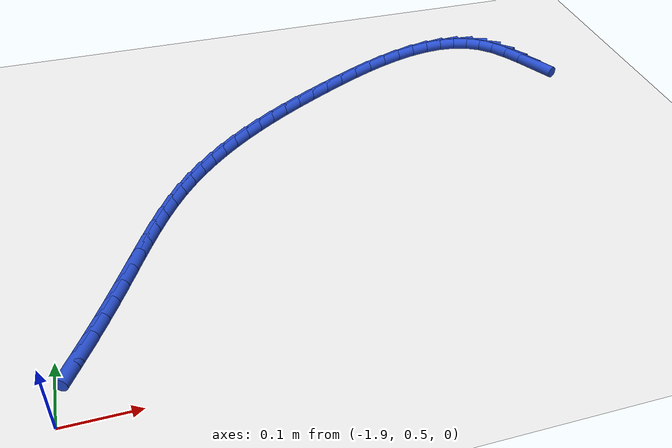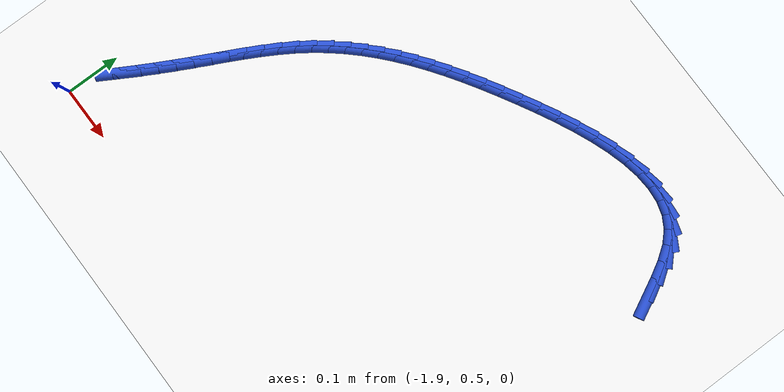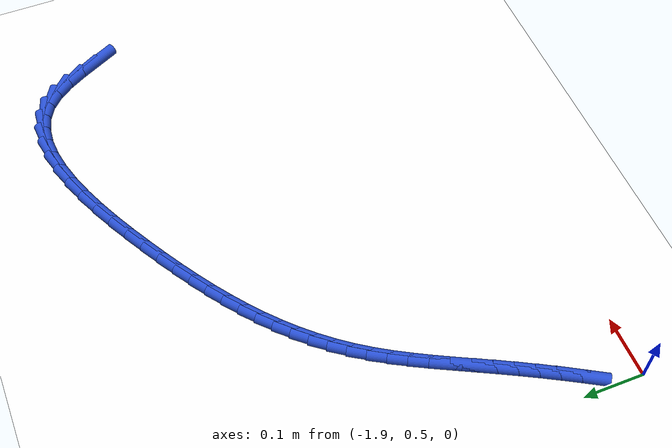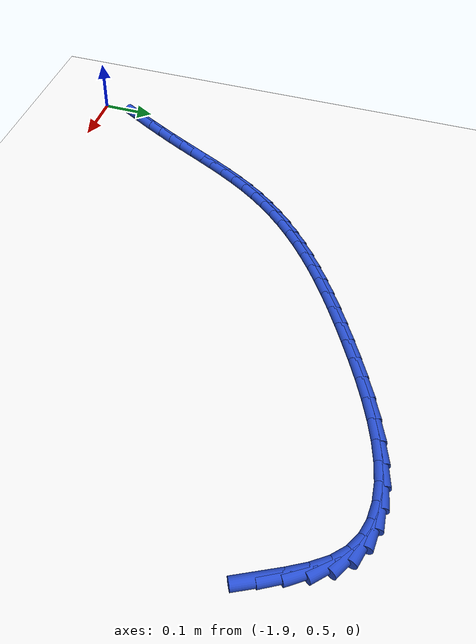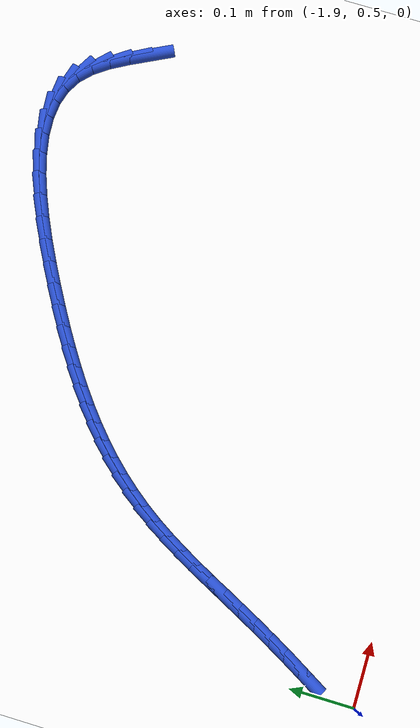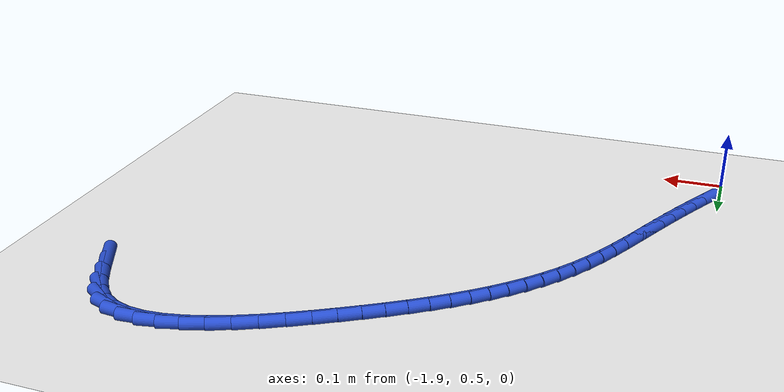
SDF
<sdf version="1.6">
 <world name="default">
  <model name="ground_plane">
   <static>1</static>
   <link name="link">
    <collision name="collision">
     <geometry><plane><normal>0 0 1</normal><size>100 100</size></plane></geometry>
     <surface><friction><ode><mu>100</mu><mu2>50</mu2></ode></friction></surface>
    </collision>
    <visual name="visual">
     <cast_shadows>0</cast_shadows>
     <geometry><plane><normal>0 0 1</normal><size>100 100</size></plane></geometry>
     <material>
      <script><uri>file://media/materials/scripts/gazebo.material</uri><name>Gazebo/WhiteGlow</name></script>
     </material>
    </visual>
   </link>
  </model>
  <model name="line">
   <link name="link_56">
    <pose>-1.0192024056913565 1.08543734775537 0.01 0 1.57 -1.1001150137602542</pose>
    <collision name="collision">
     <geometry><cylinder><radius>0.01</radius><length>0.08</length></cylinder></geometry>
    </collision>
    <visual name="visual">
     <material>
      <script><name>Gazebo/Blue</name><uri>file://media/materials/scripts/gazebo.material</uri></script>
     </material>
     <geometry><cylinder><radius>0.01</radius><length>0.08</length></cylinder></geometry>
    </visual>
   </link>
   <link name="link_57">
    <pose>-1.034193548061346 1.1148997214297889 0.01 0 1.57 -1.0549966539734452</pose>
    <collision name="collision">
     <geometry><cylinder><radius>0.01</radius><length>0.08</length></cylinder></geometry>
    </collision>
    <visual name="visual">
     <material>
      <script><name>Gazebo/Blue</name><uri>file://media/materials/scripts/gazebo.material</uri></script>
     </material>
     <geometry><cylinder><radius>0.01</radius><length>0.08</length></cylinder></geometry>
    </visual>
   </link>
   <link name="link_58">
    <pose>-1.0499886132645053 1.1427570839077557 0.01 0 1.57 -0.9488508935099754</pose>
    <collision name="collision">
     <geometry><cylinder><radius>0.01</radius><length>0.08</length></cylinder></geometry>
    </collision>
    <visual name="visual">
     <material>
      <script><name>Gazebo/Blue</name><uri>file://media/materials/scripts/gazebo.material</uri></script>
     </material>
     <geometry><cylinder><radius>0.01</radius><length>0.08</length></cylinder></geometry>
    </visual>
   </link>
   <link name="link_59">
    <pose>-1.0674953368311586 1.1671788211652299 0.01 0 1.57 -0.7615122972132938</pose>
    <collision name="collision">
     <geometry><cylinder><radius>0.01</radius><length>0.08</length></cylinder></geometry>
    </collision>
    <visual name="visual">
     <material>
      <script><name>Gazebo/Blue</name><uri>file://media/materials/scripts/gazebo.material</uri></script>
     </material>
     <geometry><cylinder><radius>0.01</radius><length>0.08</length></cylinder></geometry>
    </visual>
   </link>
   <link name="link_60">
    <pose>-1.0876102283318687 1.1863550321269283 0.01 0 1.57 -0.5149608002329189</pose>
    <collision name="collision">
     <geometry><cylinder><radius>0.01</radius><length>0.08</length></cylinder></geometry>
    </collision>
    <visual name="visual">
     <material>
      <script><name>Gazebo/Blue</name><uri>file://media/materials/scripts/gazebo.material</uri></script>
     </material>
     <geometry><cylinder><radius>0.01</radius><length>0.08</length></cylinder></geometry>
    </visual>
   </link>
   <link name="link_61">
    <pose>-1.1107132901004675 1.1994288200178327 0.01 0 1.57 -0.28146919483834854</pose>
    <collision name="collision">
     <geometry><cylinder><radius>0.01</radius><length>0.08</length></cylinder></geometry>
    </collision>
    <visual name="visual">
     <material>
      <script><name>Gazebo/Blue</name><uri>file://media/materials/scripts/gazebo.material</uri></script>
     </material>
     <geometry><cylinder><radius>0.01</radius><length>0.08</length></cylinder></geometry>
    </visual>
   </link>
   <link name="link_62">
    <pose>-1.1364631551109985 1.2068742821963363 0.01 0 1.57 -0.08515277672372246</pose>
    <collision name="collision">
     <geometry><cylinder><radius>0.01</radius><length>0.08</length></cylinder></geometry>
    </collision>
    <visual name="visual">
     <material>
      <script><name>Gazebo/Blue</name><uri>file://media/materials/scripts/gazebo.material</uri></script>
     </material>
     <geometry><cylinder><radius>0.01</radius><length>0.08</length></cylinder></geometry>
    </visual>
   </link>
   <link name="link_63">
    <pose>-1.1644648192111728 1.2092644815500935 0.01 0 1.57 0.06994960627136804</pose>
    <collision name="collision">
     <geometry><cylinder><radius>0.01</radius><length>0.08</length></cylinder></geometry>
    </collision>
    <visual name="visual">
     <material>
      <script><name>Gazebo/Blue</name><uri>file://media/materials/scripts/gazebo.material</uri></script>
     </material>
     <geometry><cylinder><radius>0.01</radius><length>0.08</length></cylinder></geometry>
    </visual>
   </link>
   <link name="link_64">
    <pose>-1.1943232782487003 1.207172480966758 0.01 0 1.57 0.18931121959816494</pose>
    <collision name="collision">
     <geometry><cylinder><radius>0.01</radius><length>0.08</length></cylinder></geometry>
    </collision>
    <visual name="visual">
     <material>
      <script><name>Gazebo/Blue</name><uri>file://media/materials/scripts/gazebo.material</uri></script>
     </material>
     <geometry><cylinder><radius>0.01</radius><length>0.08</length></cylinder></geometry>
    </visual>
   </link>
   <link name="link_65">
    <pose>-1.2256435280712912 1.2011713433339852 0.01 0 1.57 0.28068942077641557</pose>
    <collision name="collision">
     <geometry><cylinder><radius>0.01</radius><length>0.08</length></cylinder></geometry>
    </collision>
    <visual name="visual">
     <material>
      <script><name>Gazebo/Blue</name><uri>file://media/materials/scripts/gazebo.material</uri></script>
     </material>
     <geometry><cylinder><radius>0.01</radius><length>0.08</length></cylinder></geometry>
    </visual>
   </link>
   <link name="link_66">
    <pose>-1.258030564526657 1.1918341315394287 0.01 0 1.57 0.3508755567940025</pose>
    <collision name="collision">
     <geometry><cylinder><radius>0.01</radius><length>0.08</length></cylinder></geometry>
    </collision>
    <visual name="visual">
     <material>
      <script><name>Gazebo/Blue</name><uri>file://media/materials/scripts/gazebo.material</uri></script>
     </material>
     <geometry><cylinder><radius>0.01</radius><length>0.08</length></cylinder></geometry>
    </visual>
   </link>
   <link name="link_67">
    <pose>-1.2910893834625061 1.1797339084707434 0.01 0 1.57 0.4049801521559771</pose>
    <collision name="collision">
     <geometry><cylinder><radius>0.01</radius><length>0.08</length></cylinder></geometry>
    </collision>
    <visual name="visual">
     <material>
      <script><name>Gazebo/Blue</name><uri>file://media/materials/scripts/gazebo.material</uri></script>
     </material>
     <geometry><cylinder><radius>0.01</radius><length>0.08</length></cylinder></geometry>
    </visual>
   </link>
   <link name="link_68">
    <pose>-1.3244249807265502 1.1654437370155832 0.01 0 1.57 0.44660739720744025</pose>
    <collision name="collision">
     <geometry><cylinder><radius>0.01</radius><length>0.08</length></cylinder></geometry>
    </collision>
    <visual name="visual">
     <material>
      <script><name>Gazebo/Blue</name><uri>file://media/materials/scripts/gazebo.material</uri></script>
     </material>
     <geometry><cylinder><radius>0.01</radius><length>0.08</length></cylinder></geometry>
    </visual>
   </link>
   <link name="link_69">
    <pose>-1.357642352166499 1.1495366800616034 0.01 0 1.57 0.47818798590809763</pose>
    <collision name="collision">
     <geometry><cylinder><radius>0.01</radius><length>0.08</length></cylinder></geometry>
    </collision>
    <visual name="visual">
     <material>
      <script><name>Gazebo/Blue</name><uri>file://media/materials/scripts/gazebo.material</uri></script>
     </material>
     <geometry><cylinder><radius>0.01</radius><length>0.08</length></cylinder></geometry>
    </visual>
   </link>
   <link name="link_70">
    <pose>-1.3903464936300638 1.1325858004964573 0.01 0 1.57 0.5012455021325636</pose>
    <collision name="collision">
     <geometry><cylinder><radius>0.01</radius><length>0.08</length></cylinder></geometry>
    </collision>
    <visual name="visual">
     <material>
      <script><name>Gazebo/Blue</name><uri>file://media/materials/scripts/gazebo.material</uri></script>
     </material>
     <geometry><cylinder><radius>0.01</radius><length>0.08</length></cylinder></geometry>
    </visual>
   </link>
   <link name="link_71">
    <pose>-1.422142400964953 1.1151641612077998 0.01 0 1.57 0.5183120464710429</pose>
    <collision name="collision">
     <geometry><cylinder><radius>0.01</radius><length>0.08</length></cylinder></geometry>
    </collision>
    <visual name="visual">
     <material>
      <script><name>Gazebo/Blue</name><uri>file://media/materials/scripts/gazebo.material</uri></script>
     </material>
     <geometry><cylinder><radius>0.01</radius><length>0.08</length></cylinder></geometry>
    </visual>
   </link>
   <link name="link_72">
    <pose>-1.4527030272311239 1.0977347428777775 0.01 0 1.57 0.536891195430585</pose>
    <collision name="collision">
     <geometry><cylinder><radius>0.01</radius><length>0.08</length></cylinder></geometry>
    </collision>
    <visual name="visual">
     <material>
      <script><name>Gazebo/Blue</name><uri>file://media/materials/scripts/gazebo.material</uri></script>
     </material>
     <geometry><cylinder><radius>0.01</radius><length>0.08</length></cylinder></geometry>
    </visual>
   </link>
   <link name="link_73">
    <pose>-1.4819803511709255 1.0803085393942546 0.01 0 1.57 0.5590350211923778</pose>
    <collision name="collision">
     <geometry><cylinder><radius>0.01</radius><length>0.08</length></cylinder></geometry>
    </collision>
    <visual name="visual">
     <material>
      <script><name>Gazebo/Blue</name><uri>file://media/materials/scripts/gazebo.material</uri></script>
     </material>
     <geometry><cylinder><radius>0.01</radius><length>0.08</length></cylinder></geometry>
    </visual>
   </link>
   <link name="link_74">
    <pose>-1.5099979545357263 1.0627805567036637 0.01 0 1.57 0.5849057392485509</pose>
    <collision name="collision">
     <geometry><cylinder><radius>0.01</radius><length>0.08</length></cylinder></geometry>
    </collision>
    <visual name="visual">
     <material>
      <script><name>Gazebo/Blue</name><uri>file://media/materials/scripts/gazebo.material</uri></script>
     </material>
     <geometry><cylinder><radius>0.01</radius><length>0.08</length></cylinder></geometry>
    </visual>
   </link>
   <link name="link_75">
    <pose>-1.5367794191229922 1.0450458006777639 0.01 0 1.57 0.6146076842261782</pose>
    <collision name="collision">
     <geometry><cylinder><radius>0.01</radius><length>0.08</length></cylinder></geometry>
    </collision>
    <visual name="visual">
     <material>
      <script><name>Gazebo/Blue</name><uri>file://media/materials/scripts/gazebo.material</uri></script>
     </material>
     <geometry><cylinder><radius>0.01</radius><length>0.08</length></cylinder></geometry>
    </visual>
   </link>
   <link name="link_76">
    <pose>-1.5623483267301899 1.0269992771883145 0.01 0 1.57 0.6481662046836052</pose>
    <collision name="collision">
     <geometry><cylinder><radius>0.01</radius><length>0.08</length></cylinder></geometry>
    </collision>
    <visual name="visual">
     <material>
      <script><name>Gazebo/Blue</name><uri>file://media/materials/scripts/gazebo.material</uri></script>
     </material>
     <geometry><cylinder><radius>0.01</radius><length>0.08</length></cylinder></geometry>
    </visual>
   </link>
   <link name="link_77">
    <pose>-1.5867282591547869 1.0085359921070747 0.01 0 1.57 0.6855056796594378</pose>
    <collision name="collision">
     <geometry><cylinder><radius>0.01</radius><length>0.08</length></cylinder></geometry>
    </collision>
    <visual name="visual">
     <material>
      <script><name>Gazebo/Blue</name><uri>file://media/materials/scripts/gazebo.material</uri></script>
     </material>
     <geometry><cylinder><radius>0.01</radius><length>0.08</length></cylinder></geometry>
    </visual>
   </link>
   <link name="link_78">
    <pose>-1.6099427981942491 0.9895509513058037 0.01 0 1.57 0.7264294198339166</pose>
    <collision name="collision">
     <geometry><cylinder><radius>0.01</radius><length>0.08</length></cylinder></geometry>
    </collision>
    <visual name="visual">
     <material>
      <script><name>Gazebo/Blue</name><uri>file://media/materials/scripts/gazebo.material</uri></script>
     </material>
     <geometry><cylinder><radius>0.01</radius><length>0.08</length></cylinder></geometry>
    </visual>
   </link>
   <link name="link_79">
    <pose>-1.6320155256460436 0.9699391606562602 0.01 0 1.57 0.7706052438497392</pose>
    <collision name="collision">
     <geometry><cylinder><radius>0.01</radius><length>0.08</length></cylinder></geometry>
    </collision>
    <visual name="visual">
     <material>
      <script><name>Gazebo/Blue</name><uri>file://media/materials/scripts/gazebo.material</uri></script>
     </material>
     <geometry><cylinder><radius>0.01</radius><length>0.08</length></cylinder></geometry>
    </visual>
   </link>
   <link name="link_80">
    <pose>-1.6529700233076359 0.9495956260302038 0.01 0 1.57 0.8175610237807371</pose>
    <collision name="collision">
     <geometry><cylinder><radius>0.01</radius><length>0.08</length></cylinder></geometry>
    </collision>
    <visual name="visual">
     <material>
      <script><name>Gazebo/Blue</name><uri>file://media/materials/scripts/gazebo.material</uri></script>
     </material>
     <geometry><cylinder><radius>0.01</radius><length>0.08</length></cylinder></geometry>
    </visual>
   </link>
   <link name="link_81">
    <pose>-1.6728298729764934 0.9284153532993927 0.01 0 1.57 0.8666939605581614</pose>
    <collision name="collision">
     <geometry><cylinder><radius>0.01</radius><length>0.08</length></cylinder></geometry>
    </collision>
    <visual name="visual">
     <material>
      <script><name>Gazebo/Blue</name><uri>file://media/materials/scripts/gazebo.material</uri></script>
     </material>
     <geometry><cylinder><radius>0.01</radius><length>0.08</length></cylinder></geometry>
    </visual>
   </link>
   <link name="link_82">
    <pose>-1.6916186564500832 0.9062933483355872 0.01 0 1.57 0.917295454663459</pose>
    <collision name="collision">
     <geometry><cylinder><radius>0.01</radius><length>0.08</length></cylinder></geometry>
    </collision>
    <visual name="visual">
     <material>
      <script><name>Gazebo/Blue</name><uri>file://media/materials/scripts/gazebo.material</uri></script>
     </material>
     <geometry><cylinder><radius>0.01</radius><length>0.08</length></cylinder></geometry>
    </visual>
   </link>
   <link name="link_83">
    <pose>-1.7093599555258707 0.8831246170105451 0.01 0 1.57 0.9685097943551371</pose>
    <collision name="collision">
     <geometry><cylinder><radius>0.01</radius><length>0.08</length></cylinder></geometry>
    </collision>
    <visual name="visual">
     <material>
      <script><name>Gazebo/Blue</name><uri>file://media/materials/scripts/gazebo.material</uri></script>
     </material>
     <geometry><cylinder><radius>0.01</radius><length>0.08</length></cylinder></geometry>
    </visual>
   </link>
   <link name="link_84">
    <pose>-1.7260786034594107 0.8588065412669647 0.01 0 1.57 1.0154740400015203</pose>
    <collision name="collision">
     <geometry><cylinder><radius>0.01</radius><length>0.08</length></cylinder></geometry>
    </collision>
    <visual name="visual">
     <material>
      <script><name>Gazebo/Blue</name><uri>file://media/materials/scripts/gazebo.material</uri></script>
     </material>
     <geometry><cylinder><radius>0.01</radius><length>0.08</length></cylinder></geometry>
    </visual>
   </link>
   <link name="link_85">
    <pose>-1.7418656202936438 0.8333621680646656 0.01 0 1.57 1.0522168962214131</pose>
    <collision name="collision">
     <geometry><cylinder><radius>0.01</radius><length>0.08</length></cylinder></geometry>
    </collision>
    <visual name="visual">
     <material>
      <script><name>Gazebo/Blue</name><uri>file://media/materials/scripts/gazebo.material</uri></script>
     </material>
     <geometry><cylinder><radius>0.01</radius><length>0.08</length></cylinder></geometry>
    </visual>
   </link>
   <link name="link_86">
    <pose>-1.7569098008613975 0.8070001836901491 0.01 0 1.57 1.078879594006362</pose>
    <collision name="collision">
     <geometry><cylinder><radius>0.01</radius><length>0.08</length></cylinder></geometry>
    </collision>
    <visual name="visual">
     <material>
      <script><name>Gazebo/Blue</name><uri>file://media/materials/scripts/gazebo.material</uri></script>
     </material>
     <geometry><cylinder><radius>0.01</radius><length>0.08</length></cylinder></geometry>
    </visual>
   </link>
   <link name="link_87">
    <pose>-1.7714078121259935 0.7799442207878268 0.01 0 1.57 1.0960119453241433</pose>
    <collision name="collision">
     <geometry><cylinder><radius>0.01</radius><length>0.08</length></cylinder></geometry>
    </collision>
    <visual name="visual">
     <material>
      <script><name>Gazebo/Blue</name><uri>file://media/materials/scripts/gazebo.material</uri></script>
     </material>
     <geometry><cylinder><radius>0.01</radius><length>0.08</length></cylinder></geometry>
    </visual>
   </link>
   <link name="link_88">
    <pose>-1.7855563210507548 0.752417912002111 0.01 0 1.57 1.1040092446541216</pose>
    <collision name="collision">
     <geometry><cylinder><radius>0.01</radius><length>0.08</length></cylinder></geometry>
    </collision>
    <visual name="visual">
     <material>
      <script><name>Gazebo/Blue</name><uri>file://media/materials/scripts/gazebo.material</uri></script>
     </material>
     <geometry><cylinder><radius>0.01</radius><length>0.08</length></cylinder></geometry>
    </visual>
   </link>
   <link name="link_89">
    <pose>-1.799551994599002 0.724644889977414 0.01 0 1.57 1.1030858261508332</pose>
    <collision name="collision">
     <geometry><cylinder><radius>0.01</radius><length>0.08</length></cylinder></geometry>
    </collision>
    <visual name="visual">
     <material>
      <script><name>Gazebo/Blue</name><uri>file://media/materials/scripts/gazebo.material</uri></script>
     </material>
     <geometry><cylinder><radius>0.01</radius><length>0.08</length></cylinder></geometry>
    </visual>
   </link>
   <link name="link_90">
    <pose>-1.8135914997340574 0.6968487873581479 0.01 0 1.57 1.0937201936598695</pose>
    <collision name="collision">
     <geometry><cylinder><radius>0.01</radius><length>0.08</length></cylinder></geometry>
    </collision>
    <visual name="visual">
     <material>
      <script><name>Gazebo/Blue</name><uri>file://media/materials/scripts/gazebo.material</uri></script>
     </material>
     <geometry><cylinder><radius>0.01</radius><length>0.08</length></cylinder></geometry>
    </visual>
   </link>
   <link name="link_91">
    <pose>-1.8278611775808116 0.6692425310246546 0.01 0 1.57 1.0811929415610815</pose>
    <collision name="collision">
     <geometry><cylinder><radius>0.01</radius><length>0.08</length></cylinder></geometry>
    </collision>
    <visual name="visual">
     <material>
      <script><name>Gazebo/Blue</name><uri>file://media/materials/scripts/gazebo.material</uri></script>
     </material>
     <geometry><cylinder><radius>0.01</radius><length>0.08</length></cylinder></geometry>
    </visual>
   </link>
   <link name="link_92">
    <pose>-1.8424249641334065 0.6419121389907919 0.01 0 1.57 1.0689936098504338</pose>
    <collision name="collision">
     <geometry><cylinder><radius>0.01</radius><length>0.08</length></cylinder></geometry>
    </collision>
    <visual name="visual">
     <material>
      <script><name>Gazebo/Blue</name><uri>file://media/materials/scripts/gazebo.material</uri></script>
     </material>
     <geometry><cylinder><radius>0.01</radius><length>0.08</length></cylinder></geometry>
    </visual>
   </link>
   <link name="link_93">
    <pose>-1.8572666855380076 0.6148605718859894 0.01 0 1.57 1.0571795156593622</pose>
    <collision name="collision">
     <geometry><cylinder><radius>0.01</radius><length>0.08</length></cylinder></geometry>
    </collision>
    <visual name="visual">
     <material>
      <script><name>Gazebo/Blue</name><uri>file://media/materials/scripts/gazebo.material</uri></script>
     </material>
     <geometry><cylinder><radius>0.01</radius><length>0.08</length></cylinder></geometry>
    </visual>
   </link>
   <link name="link_94">
    <pose>-1.8723687806682487 0.5880893520242745 0.01 0 1.57 1.0457470279527084</pose>
    <collision name="collision">
     <geometry><cylinder><radius>0.01</radius><length>0.08</length></cylinder></geometry>
    </collision>
    <visual name="visual">
     <material>
      <script><name>Gazebo/Blue</name><uri>file://media/materials/scripts/gazebo.material</uri></script>
     </material>
     <geometry><cylinder><radius>0.01</radius><length>0.08</length></cylinder></geometry>
    </visual>
   </link>
  </model>
 </world>
</sdf>
